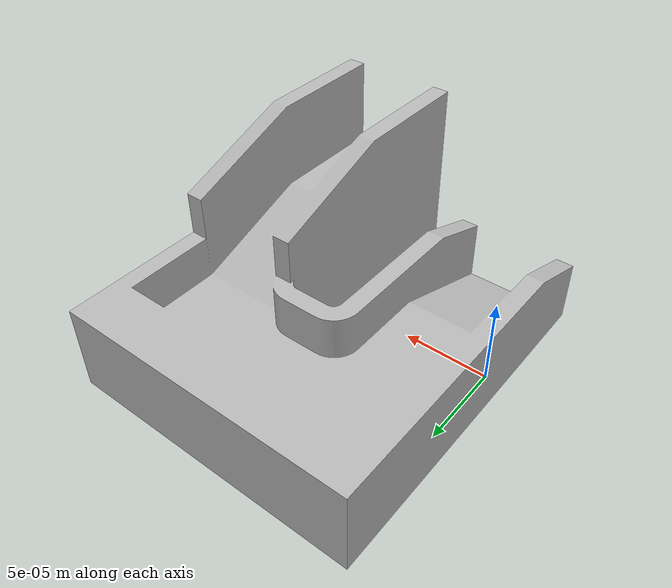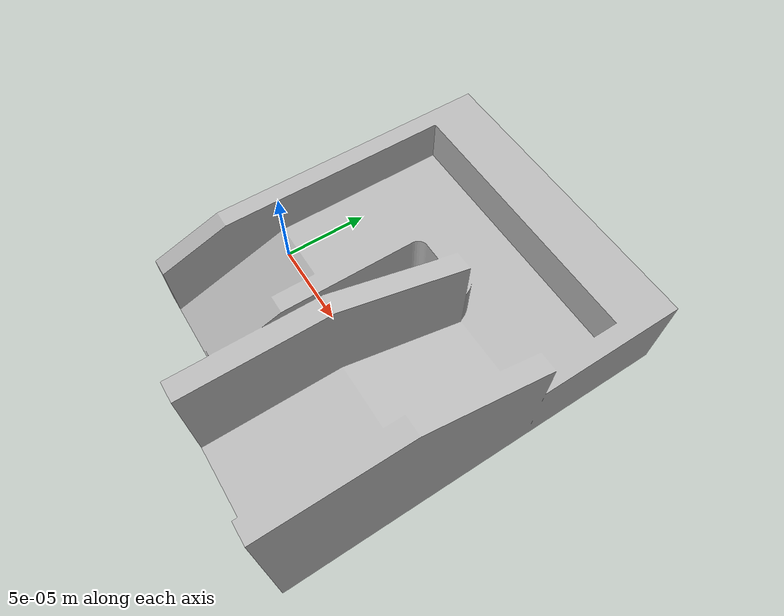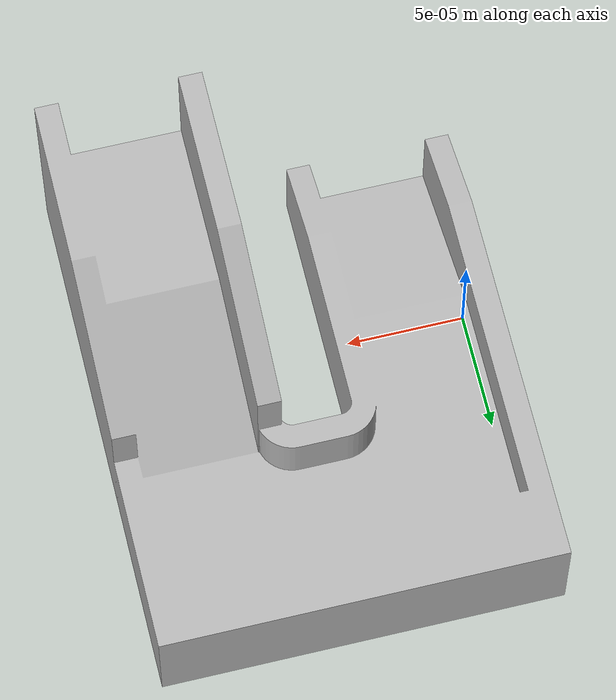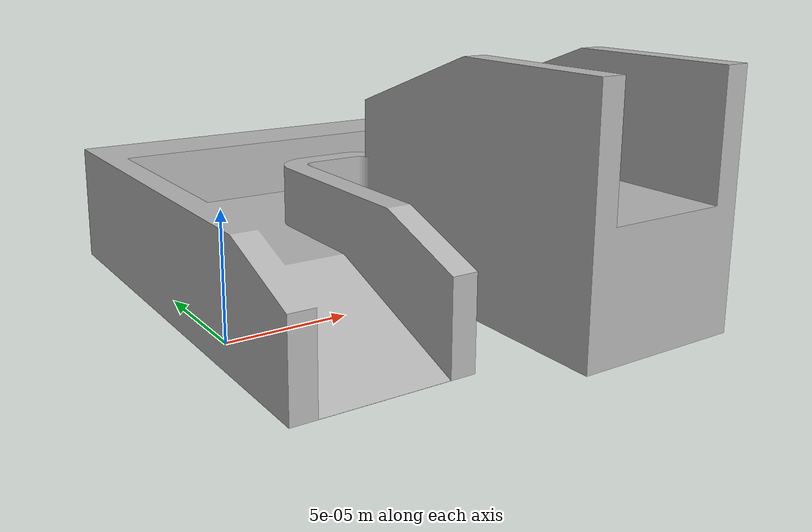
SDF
<?xml version="1.0" ?>
<sdf version="1.4">
  <model name="slope_model">
    <static>true</static>
    <link name="link">
      <collision name="collision">
        <geometry>
          <mesh>
            <scale>0.001 0.001 0.001</scale>
            <uri>model://slope_model/slope_ver2.stl</uri>
          </mesh>
        </geometry>
        <surface>
          <friction>
            <ode>
              <mu>1.2</mu>
              <mu2>1.2</mu2>
            </ode>
          </friction>
        </surface>
      </collision>
      <visual name="visual">
        <geometry>
          <mesh>
            <scale>0.001 0.001 0.001</scale>
            <uri>model://slope_model/slope_ver2.stl</uri>
          </mesh>
        </geometry>
      </visual>
    </link>
  </model>
</sdf>
